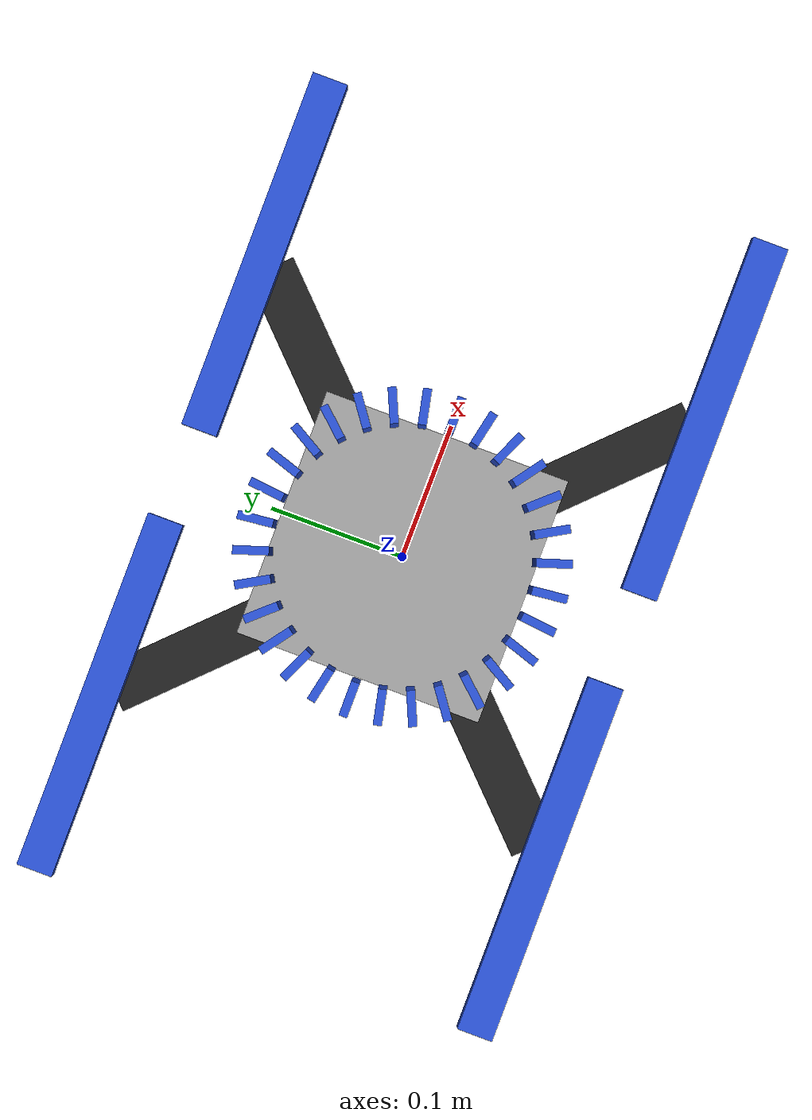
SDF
<?xml version="1.0" ?>

<sdf version="1.5">
  <model name="pendulum_quadcopter">
    <include>
      <uri>model://pendulum_quadcopter_base</uri>
      <name>pendulum_quadcopter_base</name>
      <pose>0 0 0 0 0 0</pose>
    </include>

    <include>
      <uri>model://pendulum_quadcopter_prop</uri>
      <name>pendulum_quadcopter_prop_0</name>
      <pose>0.1591 -0.1591 0.045 0 0 0</pose>
    </include>

    <joint name="pendulum_quadcopter_prop_0_joint" type="revolute">
      <parent>pendulum_quadcopter_base::platform_base</parent>
      <child>pendulum_quadcopter_prop_0::prop</child>
      <axis>
        <xyz>0 0 1</xyz>
        <limit>
          <lower>-1e+16</lower>
          <upper>1e+16</upper>
        </limit>
        <dynamics>
          <damping>0.00001</damping>
        </dynamics>
        <use_parent_model_frame>1</use_parent_model_frame>
      </axis>
    </joint>

    <plugin name="pendulum_quadcopter_prop_0_plugin" filename="librotors_gazebo_motor_model.so">
      <robotNamespace></robotNamespace>
      <jointName>pendulum_quadcopter_prop_0_joint </jointName>
      <linkName>pendulum_quadcopter_prop_0::prop</linkName>
      <turningDirection>ccw</turningDirection>
      <timeConstantUp>0.0125</timeConstantUp>
      <timeConstantDown>0.025</timeConstantDown>
      <maxRotVelocity>1000</maxRotVelocity>
      <motorConstant>8.599e-06</motorConstant>
      <momentConstant>0.1</momentConstant>
      <commandSubTopic>/gazebo/command/prop_speed</commandSubTopic>
      <motorNumber>0</motorNumber>
      <rotorDragCoefficient>0.000806428</rotorDragCoefficient>
      <rollingMomentCoefficient>1e-06</rollingMomentCoefficient>
      <motorSpeedPubTopic>prop_speed/0</motorSpeedPubTopic>
      <rotorVelocitySlowdownSim>10</rotorVelocitySlowdownSim>
    </plugin>

    <include>
      <uri>model://pendulum_quadcopter_prop</uri>
      <name>pendulum_quadcopter_prop_1</name>
      <pose>-0.1591 -0.1591 0.045 0 0 0</pose>
    </include>

    <joint name="pendulum_quadcopter_prop_1_joint" type="revolute">
      <parent>pendulum_quadcopter_base::platform_base</parent>
      <child>pendulum_quadcopter_prop_1::prop</child>
      <axis>
        <xyz>0 0 1</xyz>
        <limit>
          <lower>-1e+16</lower>
          <upper>1e+16</upper>
        </limit>
        <dynamics>
          <damping>0.00001</damping>
        </dynamics>
        <use_parent_model_frame>1</use_parent_model_frame>
      </axis>
    </joint>

    <plugin name="pendulum_quadcopter_prop_1_plugin" filename="librotors_gazebo_motor_model.so">
      <robotNamespace></robotNamespace>
      <jointName>pendulum_quadcopter_prop_1_joint </jointName>
      <linkName>pendulum_quadcopter_prop_1::prop</linkName>
      <turningDirection>cw</turningDirection>
      <timeConstantUp>0.0125</timeConstantUp>
      <timeConstantDown>0.025</timeConstantDown>
      <maxRotVelocity>1000</maxRotVelocity>
      <motorConstant>8.599e-06</motorConstant>
      <momentConstant>0.1</momentConstant>
      <commandSubTopic>/gazebo/command/prop_speed</commandSubTopic>
      <motorNumber>1</motorNumber>
      <rotorDragCoefficient>0.000806428</rotorDragCoefficient>
      <rollingMomentCoefficient>1e-06</rollingMomentCoefficient>
      <motorSpeedPubTopic>prop_speed/1</motorSpeedPubTopic>
      <rotorVelocitySlowdownSim>10</rotorVelocitySlowdownSim>
    </plugin>

    <include>
      <uri>model://pendulum_quadcopter_prop</uri>
      <name>pendulum_quadcopter_prop_2</name>
      <pose>-0.1591 0.1591 0.045 0 0 3.141592653589793</pose>
    </include>

    <joint name="pendulum_quadcopter_prop_2_joint" type="revolute">
      <parent>pendulum_quadcopter_base::platform_base</parent>
      <child>pendulum_quadcopter_prop_2::prop</child>
      <axis>
        <xyz>0 0 1</xyz>
        <limit>
          <lower>-1e+16</lower>
          <upper>1e+16</upper>
        </limit>
        <dynamics>
          <damping>0.00001</damping>
        </dynamics>
        <use_parent_model_frame>1</use_parent_model_frame>
      </axis>
    </joint>

    <plugin name="pendulum_quadcopter_prop_2_plugin" filename="librotors_gazebo_motor_model.so">
      <robotNamespace></robotNamespace>
      <jointName>pendulum_quadcopter_prop_2_joint </jointName>
      <linkName>pendulum_quadcopter_prop_2::prop</linkName>
      <turningDirection>ccw</turningDirection>
      <timeConstantUp>0.0125</timeConstantUp>
      <timeConstantDown>0.025</timeConstantDown>
      <maxRotVelocity>1000</maxRotVelocity>
      <motorConstant>8.599e-06</motorConstant>
      <momentConstant>0.1</momentConstant>
      <commandSubTopic>/gazebo/command/prop_speed</commandSubTopic>
      <motorNumber>2</motorNumber>
      <rotorDragCoefficient>0.000806428</rotorDragCoefficient>
      <rollingMomentCoefficient>1e-06</rollingMomentCoefficient>
      <motorSpeedPubTopic>prop_speed/2</motorSpeedPubTopic>
      <rotorVelocitySlowdownSim>10</rotorVelocitySlowdownSim>
    </plugin>

    <include>
      <uri>model://pendulum_quadcopter_prop</uri>
      <name>pendulum_quadcopter_prop_3</name>
      <pose>0.1591 0.1591 0.045 0 0 3.141592653589793</pose>
    </include>

    <joint name="pendulum_quadcopter_prop_3_joint" type="revolute">
      <parent>pendulum_quadcopter_base::platform_base</parent>
      <child>pendulum_quadcopter_prop_3::prop</child>
      <axis>
        <xyz>0 0 1</xyz>
        <limit>
          <lower>-1e+16</lower>
          <upper>1e+16</upper>
        </limit>
        <dynamics>
          <damping>0.00001</damping>
        </dynamics>
        <use_parent_model_frame>1</use_parent_model_frame>
      </axis>
    </joint>

    <plugin name="pendulum_quadcopter_prop_3_plugin" filename="librotors_gazebo_motor_model.so">
      <robotNamespace></robotNamespace>
      <jointName>pendulum_quadcopter_prop_3_joint </jointName>
      <linkName>pendulum_quadcopter_prop_3::prop</linkName>
      <turningDirection>cw</turningDirection>
      <timeConstantUp>0.0125</timeConstantUp>
      <timeConstantDown>0.025</timeConstantDown>
      <maxRotVelocity>1000</maxRotVelocity>
      <motorConstant>8.599e-06</motorConstant>
      <momentConstant>0.1</momentConstant>
      <commandSubTopic>/gazebo/command/prop_speed</commandSubTopic>
      <motorNumber>3</motorNumber>
      <rotorDragCoefficient>0.000806428</rotorDragCoefficient>
      <rollingMomentCoefficient>1e-06</rollingMomentCoefficient>
      <motorSpeedPubTopic>prop_speed/3</motorSpeedPubTopic>
      <rotorVelocitySlowdownSim>10</rotorVelocitySlowdownSim>
    </plugin>

    <plugin name="ArduRotorNormPlugin" filename="libArduRotorNormPlugin.so">
      <fdm_addr>127.0.0.1</fdm_addr>
      <fdm_port_in>9002</fdm_port_in>
      <fdm_port_out>9003</fdm_port_out>
      <modelXYZToAirplaneXForwardZDown>0 0 0 3.141593 0 0</modelXYZToAirplaneXForwardZDown>
      <gazeboXYZToNED>0 0 0 3.141593 0 0</gazeboXYZToNED>
      <motor_num>4</motor_num>
      <servo_num>0</servo_num>
      <motor_pub>/gazebo/command/prop_speed</motor_pub>
      <imuName>pendulum_quadcopter_base::imu_link::imu_sensor</imuName>
      <connectionTimeoutMaxCount>5</connectionTimeoutMaxCount>
    </plugin>
  </model>
</sdf>

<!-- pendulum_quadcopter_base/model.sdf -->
<sdf version="1.5">
  <model name="pendulum_quadcopter_platform">
    <link name="platform_base">
      <pose>0 0 0 0 0 0</pose>
      <inertial>
        <pose>0 0 0 0 0 0</pose>
        <mass>1.1</mass>
        <inertia>
          <ixx>0.018</ixx>
          <iyy>0.018</iyy>
          <izz>0.032</izz>
          <ixy>0</ixy>
          <ixz>0</ixz>
          <iyz>0</iyz>
        </inertia>
      </inertial>

      <collision name="body_collision">
        <pose>0 0 0 0 0 0</pose>
        <geometry>
          <box>
            <size>0.18 0.18 0.045</size>
          </box>
        </geometry>
        <surface>
          <contact>
            <ode>
              <max_vel>100.0</max_vel>
              <min_depth>0.001</min_depth>
            </ode>
          </contact>
          <friction>
            <ode>
              <mu>100000.0</mu>
              <mu2>100000.0</mu2>
            </ode>
          </friction>
        </surface>
      </collision>
      <visual name="body_visual">
        <pose>0 0 0 0 0 0</pose>
        <geometry>
          <box>
            <size>0.18 0.18 0.045</size>
          </box>
        </geometry>
        <material>
          <script>
            <name>Gazebo/Grey</name>
          </script>
        </material>
      </visual>

      <collision name="arm_positive_collision">
        <pose>0 0 0 0 0 0.7853981633974483</pose>
        <geometry>
          <box>
            <size>0.45 0.035 0.025</size>
          </box>
        </geometry>
      </collision>
      <visual name="arm_positive_visual">
        <pose>0 0 0 0 0 0.7853981633974483</pose>
        <geometry>
          <box>
            <size>0.45 0.035 0.025</size>
          </box>
        </geometry>
        <material>
          <script>
            <name>Gazebo/Black</name>
          </script>
        </material>
      </visual>

      <collision name="arm_negative_collision">
        <pose>0 0 0 0 0 -0.7853981633974483</pose>
        <geometry>
          <box>
            <size>0.45 0.035 0.025</size>
          </box>
        </geometry>
      </collision>
      <visual name="arm_negative_visual">
        <pose>0 0 0 0 0 -0.7853981633974483</pose>
        <geometry>
          <box>
            <size>0.45 0.035 0.025</size>
          </box>
        </geometry>
        <material>
          <script>
            <name>Gazebo/Black</name>
          </script>
        </material>
      </visual>

      <collision name="pendulum_cup_collision_0">
        <pose>0.10300000000000001 0.0 0.035 0 0 0.0</pose>
        <geometry>
          <box>
            <size>0.0248081099878474 0.006 0.025</size>
          </box>
        </geometry>
        <surface>
          <contact>
            <ode>
              <max_vel>100.0</max_vel>
              <min_depth>0.001</min_depth>
            </ode>
          </contact>
          <friction>
            <ode>
              <mu>100000.0</mu>
              <mu2>100000.0</mu2>
            </ode>
          </friction>
        </surface>
      </collision>
      <visual name="pendulum_cup_visual_0">
        <pose>0.10300000000000001 0.0 0.035 0 0 0.0</pose>
        <geometry>
          <box>
            <size>0.0248081099878474 0.006 0.025</size>
          </box>
        </geometry>
        <material>
          <script>
            <name>Gazebo/Blue</name>
          </script>
        </material>
      </visual>

      <collision name="pendulum_cup_collision_1">
        <pose>0.10074920287558199 0.02141490415422921 0.035 0 0 0.20943951023931953</pose>
        <geometry>
          <box>
            <size>0.0248081099878474 0.006 0.025</size>
          </box>
        </geometry>
        <surface>
          <contact>
            <ode>
              <max_vel>100.0</max_vel>
              <min_depth>0.001</min_depth>
            </ode>
          </contact>
          <friction>
            <ode>
              <mu>100000.0</mu>
              <mu2>100000.0</mu2>
            </ode>
          </friction>
        </surface>
      </collision>
      <visual name="pendulum_cup_visual_1">
        <pose>0.10074920287558199 0.02141490415422921 0.035 0 0 0.20943951023931953</pose>
        <geometry>
          <box>
            <size>0.0248081099878474 0.006 0.025</size>
          </box>
        </geometry>
        <material>
          <script>
            <name>Gazebo/Blue</name>
          </script>
        </material>
      </visual>

      <collision name="pendulum_cup_collision_2">
        <pose>0.0940951821371879 0.04189387423680742 0.035 0 0 0.41887902047863906</pose>
        <geometry>
          <box>
            <size>0.0248081099878474 0.006 0.025</size>
          </box>
        </geometry>
        <surface>
          <contact>
            <ode>
              <max_vel>100.0</max_vel>
              <min_depth>0.001</min_depth>
            </ode>
          </contact>
          <friction>
            <ode>
              <mu>100000.0</mu>
              <mu2>100000.0</mu2>
            </ode>
          </friction>
        </surface>
      </collision>
      <visual name="pendulum_cup_visual_2">
        <pose>0.0940951821371879 0.04189387423680742 0.035 0 0 0.41887902047863906</pose>
        <geometry>
          <box>
            <size>0.0248081099878474 0.006 0.025</size>
          </box>
        </geometry>
        <material>
          <script>
            <name>Gazebo/Blue</name>
          </script>
        </material>
      </visual>

      <collision name="pendulum_cup_collision_3">
        <pose>0.08332875042061959 0.06054188098612474 0.035 0 0 0.6283185307179586</pose>
        <geometry>
          <box>
            <size>0.0248081099878474 0.006 0.025</size>
          </box>
        </geometry>
        <surface>
          <contact>
            <ode>
              <max_vel>100.0</max_vel>
              <min_depth>0.001</min_depth>
            </ode>
          </contact>
          <friction>
            <ode>
              <mu>100000.0</mu>
              <mu2>100000.0</mu2>
            </ode>
          </friction>
        </surface>
      </collision>
      <visual name="pendulum_cup_visual_3">
        <pose>0.08332875042061959 0.06054188098612474 0.035 0 0 0.6283185307179586</pose>
        <geometry>
          <box>
            <size>0.0248081099878474 0.006 0.025</size>
          </box>
        </geometry>
        <material>
          <script>
            <name>Gazebo/Blue</name>
          </script>
        </material>
      </visual>

      <collision name="pendulum_cup_collision_4">
        <pose>0.06892045245496241 0.0765439170241716 0.035 0 0 0.8377580409572781</pose>
        <geometry>
          <box>
            <size>0.0248081099878474 0.006 0.025</size>
          </box>
        </geometry>
        <surface>
          <contact>
            <ode>
              <max_vel>100.0</max_vel>
              <min_depth>0.001</min_depth>
            </ode>
          </contact>
          <friction>
            <ode>
              <mu>100000.0</mu>
              <mu2>100000.0</mu2>
            </ode>
          </friction>
        </surface>
      </collision>
      <visual name="pendulum_cup_visual_4">
        <pose>0.06892045245496241 0.0765439170241716 0.035 0 0 0.8377580409572781</pose>
        <geometry>
          <box>
            <size>0.0248081099878474 0.006 0.025</size>
          </box>
        </geometry>
        <material>
          <script>
            <name>Gazebo/Blue</name>
          </script>
        </material>
      </visual>

      <collision name="pendulum_cup_collision_5">
        <pose>0.05150000000000002 0.08920061658979718 0.035 0 0 1.0471975511965976</pose>
        <geometry>
          <box>
            <size>0.0248081099878474 0.006 0.025</size>
          </box>
        </geometry>
        <surface>
          <contact>
            <ode>
              <max_vel>100.0</max_vel>
              <min_depth>0.001</min_depth>
            </ode>
          </contact>
          <friction>
            <ode>
              <mu>100000.0</mu>
              <mu2>100000.0</mu2>
            </ode>
          </friction>
        </surface>
      </collision>
      <visual name="pendulum_cup_visual_5">
        <pose>0.05150000000000002 0.08920061658979718 0.035 0 0 1.0471975511965976</pose>
        <geometry>
          <box>
            <size>0.0248081099878474 0.006 0.025</size>
          </box>
        </geometry>
        <material>
          <script>
            <name>Gazebo/Blue</name>
          </script>
        </material>
      </visual>

      <collision name="pendulum_cup_collision_6">
        <pose>0.03182875042061959 0.09795882117840082 0.035 0 0 1.2566370614359172</pose>
        <geometry>
          <box>
            <size>0.0248081099878474 0.006 0.025</size>
          </box>
        </geometry>
        <surface>
          <contact>
            <ode>
              <max_vel>100.0</max_vel>
              <min_depth>0.001</min_depth>
            </ode>
          </contact>
          <friction>
            <ode>
              <mu>100000.0</mu>
              <mu2>100000.0</mu2>
            </ode>
          </friction>
        </surface>
      </collision>
      <visual name="pendulum_cup_visual_6">
        <pose>0.03182875042061959 0.09795882117840082 0.035 0 0 1.2566370614359172</pose>
        <geometry>
          <box>
            <size>0.0248081099878474 0.006 0.025</size>
          </box>
        </geometry>
        <material>
          <script>
            <name>Gazebo/Blue</name>
          </script>
        </material>
      </visual>

      <collision name="pendulum_cup_collision_7">
        <pose>0.010766431716568306 0.10243575522293216 0.035 0 0 1.4660765716752369</pose>
        <geometry>
          <box>
            <size>0.0248081099878474 0.006 0.025</size>
          </box>
        </geometry>
        <surface>
          <contact>
            <ode>
              <max_vel>100.0</max_vel>
              <min_depth>0.001</min_depth>
            </ode>
          </contact>
          <friction>
            <ode>
              <mu>100000.0</mu>
              <mu2>100000.0</mu2>
            </ode>
          </friction>
        </surface>
      </collision>
      <visual name="pendulum_cup_visual_7">
        <pose>0.010766431716568306 0.10243575522293216 0.035 0 0 1.4660765716752369</pose>
        <geometry>
          <box>
            <size>0.0248081099878474 0.006 0.025</size>
          </box>
        </geometry>
        <material>
          <script>
            <name>Gazebo/Blue</name>
          </script>
        </material>
      </visual>

      <collision name="pendulum_cup_collision_8">
        <pose>-0.010766431716568294 0.10243575522293216 0.035 0 0 1.6755160819145563</pose>
        <geometry>
          <box>
            <size>0.0248081099878474 0.006 0.025</size>
          </box>
        </geometry>
        <surface>
          <contact>
            <ode>
              <max_vel>100.0</max_vel>
              <min_depth>0.001</min_depth>
            </ode>
          </contact>
          <friction>
            <ode>
              <mu>100000.0</mu>
              <mu2>100000.0</mu2>
            </ode>
          </friction>
        </surface>
      </collision>
      <visual name="pendulum_cup_visual_8">
        <pose>-0.010766431716568294 0.10243575522293216 0.035 0 0 1.6755160819145563</pose>
        <geometry>
          <box>
            <size>0.0248081099878474 0.006 0.025</size>
          </box>
        </geometry>
        <material>
          <script>
            <name>Gazebo/Blue</name>
          </script>
        </material>
      </visual>

      <collision name="pendulum_cup_collision_9">
        <pose>-0.03182875042061958 0.09795882117840084 0.035 0 0 1.8849555921538759</pose>
        <geometry>
          <box>
            <size>0.0248081099878474 0.006 0.025</size>
          </box>
        </geometry>
        <surface>
          <contact>
            <ode>
              <max_vel>100.0</max_vel>
              <min_depth>0.001</min_depth>
            </ode>
          </contact>
          <friction>
            <ode>
              <mu>100000.0</mu>
              <mu2>100000.0</mu2>
            </ode>
          </friction>
        </surface>
      </collision>
      <visual name="pendulum_cup_visual_9">
        <pose>-0.03182875042061958 0.09795882117840084 0.035 0 0 1.8849555921538759</pose>
        <geometry>
          <box>
            <size>0.0248081099878474 0.006 0.025</size>
          </box>
        </geometry>
        <material>
          <script>
            <name>Gazebo/Blue</name>
          </script>
        </material>
      </visual>

      <collision name="pendulum_cup_collision_10">
        <pose>-0.05149999999999998 0.0892006165897972 0.035 0 0 2.0943951023931953</pose>
        <geometry>
          <box>
            <size>0.0248081099878474 0.006 0.025</size>
          </box>
        </geometry>
        <surface>
          <contact>
            <ode>
              <max_vel>100.0</max_vel>
              <min_depth>0.001</min_depth>
            </ode>
          </contact>
          <friction>
            <ode>
              <mu>100000.0</mu>
              <mu2>100000.0</mu2>
            </ode>
          </friction>
        </surface>
      </collision>
      <visual name="pendulum_cup_visual_10">
        <pose>-0.05149999999999998 0.0892006165897972 0.035 0 0 2.0943951023931953</pose>
        <geometry>
          <box>
            <size>0.0248081099878474 0.006 0.025</size>
          </box>
        </geometry>
        <material>
          <script>
            <name>Gazebo/Blue</name>
          </script>
        </material>
      </visual>

      <collision name="pendulum_cup_collision_11">
        <pose>-0.06892045245496237 0.07654391702417164 0.035 0 0 2.3038346126325147</pose>
        <geometry>
          <box>
            <size>0.0248081099878474 0.006 0.025</size>
          </box>
        </geometry>
        <surface>
          <contact>
            <ode>
              <max_vel>100.0</max_vel>
              <min_depth>0.001</min_depth>
            </ode>
          </contact>
          <friction>
            <ode>
              <mu>100000.0</mu>
              <mu2>100000.0</mu2>
            </ode>
          </friction>
        </surface>
      </collision>
      <visual name="pendulum_cup_visual_11">
        <pose>-0.06892045245496237 0.07654391702417164 0.035 0 0 2.3038346126325147</pose>
        <geometry>
          <box>
            <size>0.0248081099878474 0.006 0.025</size>
          </box>
        </geometry>
        <material>
          <script>
            <name>Gazebo/Blue</name>
          </script>
        </material>
      </visual>

      <collision name="pendulum_cup_collision_12">
        <pose>-0.08332875042061959 0.06054188098612475 0.035 0 0 2.5132741228718345</pose>
        <geometry>
          <box>
            <size>0.0248081099878474 0.006 0.025</size>
          </box>
        </geometry>
        <surface>
          <contact>
            <ode>
              <max_vel>100.0</max_vel>
              <min_depth>0.001</min_depth>
            </ode>
          </contact>
          <friction>
            <ode>
              <mu>100000.0</mu>
              <mu2>100000.0</mu2>
            </ode>
          </friction>
        </surface>
      </collision>
      <visual name="pendulum_cup_visual_12">
        <pose>-0.08332875042061959 0.06054188098612475 0.035 0 0 2.5132741228718345</pose>
        <geometry>
          <box>
            <size>0.0248081099878474 0.006 0.025</size>
          </box>
        </geometry>
        <material>
          <script>
            <name>Gazebo/Blue</name>
          </script>
        </material>
      </visual>

      <collision name="pendulum_cup_collision_13">
        <pose>-0.09409518213718791 0.041893874236807405 0.035 0 0 2.7227136331111543</pose>
        <geometry>
          <box>
            <size>0.0248081099878474 0.006 0.025</size>
          </box>
        </geometry>
        <surface>
          <contact>
            <ode>
              <max_vel>100.0</max_vel>
              <min_depth>0.001</min_depth>
            </ode>
          </contact>
          <friction>
            <ode>
              <mu>100000.0</mu>
              <mu2>100000.0</mu2>
            </ode>
          </friction>
        </surface>
      </collision>
      <visual name="pendulum_cup_visual_13">
        <pose>-0.09409518213718791 0.041893874236807405 0.035 0 0 2.7227136331111543</pose>
        <geometry>
          <box>
            <size>0.0248081099878474 0.006 0.025</size>
          </box>
        </geometry>
        <material>
          <script>
            <name>Gazebo/Blue</name>
          </script>
        </material>
      </visual>

      <collision name="pendulum_cup_collision_14">
        <pose>-0.10074920287558199 0.02141490415422921 0.035 0 0 2.9321531433504737</pose>
        <geometry>
          <box>
            <size>0.0248081099878474 0.006 0.025</size>
          </box>
        </geometry>
        <surface>
          <contact>
            <ode>
              <max_vel>100.0</max_vel>
              <min_depth>0.001</min_depth>
            </ode>
          </contact>
          <friction>
            <ode>
              <mu>100000.0</mu>
              <mu2>100000.0</mu2>
            </ode>
          </friction>
        </surface>
      </collision>
      <visual name="pendulum_cup_visual_14">
        <pose>-0.10074920287558199 0.02141490415422921 0.035 0 0 2.9321531433504737</pose>
        <geometry>
          <box>
            <size>0.0248081099878474 0.006 0.025</size>
          </box>
        </geometry>
        <material>
          <script>
            <name>Gazebo/Blue</name>
          </script>
        </material>
      </visual>

      <collision name="pendulum_cup_collision_15">
        <pose>-0.10300000000000001 5.83550506457742e-17 0.035 0 0 3.1415926535897927</pose>
        <geometry>
          <box>
            <size>0.0248081099878474 0.006 0.025</size>
          </box>
        </geometry>
        <surface>
          <contact>
            <ode>
              <max_vel>100.0</max_vel>
              <min_depth>0.001</min_depth>
            </ode>
          </contact>
          <friction>
            <ode>
              <mu>100000.0</mu>
              <mu2>100000.0</mu2>
            </ode>
          </friction>
        </surface>
      </collision>
      <visual name="pendulum_cup_visual_15">
        <pose>-0.10300000000000001 5.83550506457742e-17 0.035 0 0 3.1415926535897927</pose>
        <geometry>
          <box>
            <size>0.0248081099878474 0.006 0.025</size>
          </box>
        </geometry>
        <material>
          <script>
            <name>Gazebo/Blue</name>
          </script>
        </material>
      </visual>

      <collision name="pendulum_cup_collision_16">
        <pose>-0.10074920287558199 -0.021414904154229187 0.035 0 0 3.3510321638291125</pose>
        <geometry>
          <box>
            <size>0.0248081099878474 0.006 0.025</size>
          </box>
        </geometry>
        <surface>
          <contact>
            <ode>
              <max_vel>100.0</max_vel>
              <min_depth>0.001</min_depth>
            </ode>
          </contact>
          <friction>
            <ode>
              <mu>100000.0</mu>
              <mu2>100000.0</mu2>
            </ode>
          </friction>
        </surface>
      </collision>
      <visual name="pendulum_cup_visual_16">
        <pose>-0.10074920287558199 -0.021414904154229187 0.035 0 0 3.3510321638291125</pose>
        <geometry>
          <box>
            <size>0.0248081099878474 0.006 0.025</size>
          </box>
        </geometry>
        <material>
          <script>
            <name>Gazebo/Blue</name>
          </script>
        </material>
      </visual>

      <collision name="pendulum_cup_collision_17">
        <pose>-0.0940951821371879 -0.041893874236807425 0.035 0 0 3.5604716740684323</pose>
        <geometry>
          <box>
            <size>0.0248081099878474 0.006 0.025</size>
          </box>
        </geometry>
        <surface>
          <contact>
            <ode>
              <max_vel>100.0</max_vel>
              <min_depth>0.001</min_depth>
            </ode>
          </contact>
          <friction>
            <ode>
              <mu>100000.0</mu>
              <mu2>100000.0</mu2>
            </ode>
          </friction>
        </surface>
      </collision>
      <visual name="pendulum_cup_visual_17">
        <pose>-0.0940951821371879 -0.041893874236807425 0.035 0 0 3.5604716740684323</pose>
        <geometry>
          <box>
            <size>0.0248081099878474 0.006 0.025</size>
          </box>
        </geometry>
        <material>
          <script>
            <name>Gazebo/Blue</name>
          </script>
        </material>
      </visual>

      <collision name="pendulum_cup_collision_18">
        <pose>-0.0833287504206196 -0.06054188098612473 0.035 0 0 3.7699111843077517</pose>
        <geometry>
          <box>
            <size>0.0248081099878474 0.006 0.025</size>
          </box>
        </geometry>
        <surface>
          <contact>
            <ode>
              <max_vel>100.0</max_vel>
              <min_depth>0.001</min_depth>
            </ode>
          </contact>
          <friction>
            <ode>
              <mu>100000.0</mu>
              <mu2>100000.0</mu2>
            </ode>
          </friction>
        </surface>
      </collision>
      <visual name="pendulum_cup_visual_18">
        <pose>-0.0833287504206196 -0.06054188098612473 0.035 0 0 3.7699111843077517</pose>
        <geometry>
          <box>
            <size>0.0248081099878474 0.006 0.025</size>
          </box>
        </geometry>
        <material>
          <script>
            <name>Gazebo/Blue</name>
          </script>
        </material>
      </visual>

      <collision name="pendulum_cup_collision_19">
        <pose>-0.06892045245496242 -0.07654391702417158 0.035 0 0 3.979350694547071</pose>
        <geometry>
          <box>
            <size>0.0248081099878474 0.006 0.025</size>
          </box>
        </geometry>
        <surface>
          <contact>
            <ode>
              <max_vel>100.0</max_vel>
              <min_depth>0.001</min_depth>
            </ode>
          </contact>
          <friction>
            <ode>
              <mu>100000.0</mu>
              <mu2>100000.0</mu2>
            </ode>
          </friction>
        </surface>
      </collision>
      <visual name="pendulum_cup_visual_19">
        <pose>-0.06892045245496242 -0.07654391702417158 0.035 0 0 3.979350694547071</pose>
        <geometry>
          <box>
            <size>0.0248081099878474 0.006 0.025</size>
          </box>
        </geometry>
        <material>
          <script>
            <name>Gazebo/Blue</name>
          </script>
        </material>
      </visual>

      <collision name="pendulum_cup_collision_20">
        <pose>-0.05150000000000005 -0.08920061658979717 0.035 0 0 4.1887902047863905</pose>
        <geometry>
          <box>
            <size>0.0248081099878474 0.006 0.025</size>
          </box>
        </geometry>
        <surface>
          <contact>
            <ode>
              <max_vel>100.0</max_vel>
              <min_depth>0.001</min_depth>
            </ode>
          </contact>
          <friction>
            <ode>
              <mu>100000.0</mu>
              <mu2>100000.0</mu2>
            </ode>
          </friction>
        </surface>
      </collision>
      <visual name="pendulum_cup_visual_20">
        <pose>-0.05150000000000005 -0.08920061658979717 0.035 0 0 4.1887902047863905</pose>
        <geometry>
          <box>
            <size>0.0248081099878474 0.006 0.025</size>
          </box>
        </geometry>
        <material>
          <script>
            <name>Gazebo/Blue</name>
          </script>
        </material>
      </visual>

      <collision name="pendulum_cup_collision_21">
        <pose>-0.031828750420619605 -0.09795882117840082 0.035 0 0 4.39822971502571</pose>
        <geometry>
          <box>
            <size>0.0248081099878474 0.006 0.025</size>
          </box>
        </geometry>
        <surface>
          <contact>
            <ode>
              <max_vel>100.0</max_vel>
              <min_depth>0.001</min_depth>
            </ode>
          </contact>
          <friction>
            <ode>
              <mu>100000.0</mu>
              <mu2>100000.0</mu2>
            </ode>
          </friction>
        </surface>
      </collision>
      <visual name="pendulum_cup_visual_21">
        <pose>-0.031828750420619605 -0.09795882117840082 0.035 0 0 4.39822971502571</pose>
        <geometry>
          <box>
            <size>0.0248081099878474 0.006 0.025</size>
          </box>
        </geometry>
        <material>
          <script>
            <name>Gazebo/Blue</name>
          </script>
        </material>
      </visual>

      <collision name="pendulum_cup_collision_22">
        <pose>-0.010766431716568386 -0.10243575522293216 0.035 0 0 4.607669225265029</pose>
        <geometry>
          <box>
            <size>0.0248081099878474 0.006 0.025</size>
          </box>
        </geometry>
        <surface>
          <contact>
            <ode>
              <max_vel>100.0</max_vel>
              <min_depth>0.001</min_depth>
            </ode>
          </contact>
          <friction>
            <ode>
              <mu>100000.0</mu>
              <mu2>100000.0</mu2>
            </ode>
          </friction>
        </surface>
      </collision>
      <visual name="pendulum_cup_visual_22">
        <pose>-0.010766431716568386 -0.10243575522293216 0.035 0 0 4.607669225265029</pose>
        <geometry>
          <box>
            <size>0.0248081099878474 0.006 0.025</size>
          </box>
        </geometry>
        <material>
          <script>
            <name>Gazebo/Blue</name>
          </script>
        </material>
      </visual>

      <collision name="pendulum_cup_collision_23">
        <pose>0.010766431716568258 -0.10243575522293216 0.035 0 0 4.817108735504349</pose>
        <geometry>
          <box>
            <size>0.0248081099878474 0.006 0.025</size>
          </box>
        </geometry>
        <surface>
          <contact>
            <ode>
              <max_vel>100.0</max_vel>
              <min_depth>0.001</min_depth>
            </ode>
          </contact>
          <friction>
            <ode>
              <mu>100000.0</mu>
              <mu2>100000.0</mu2>
            </ode>
          </friction>
        </surface>
      </collision>
      <visual name="pendulum_cup_visual_23">
        <pose>0.010766431716568258 -0.10243575522293216 0.035 0 0 4.817108735504349</pose>
        <geometry>
          <box>
            <size>0.0248081099878474 0.006 0.025</size>
          </box>
        </geometry>
        <material>
          <script>
            <name>Gazebo/Blue</name>
          </script>
        </material>
      </visual>

      <collision name="pendulum_cup_collision_24">
        <pose>0.03182875042061957 -0.09795882117840084 0.035 0 0 5.026548245743669</pose>
        <geometry>
          <box>
            <size>0.0248081099878474 0.006 0.025</size>
          </box>
        </geometry>
        <surface>
          <contact>
            <ode>
              <max_vel>100.0</max_vel>
              <min_depth>0.001</min_depth>
            </ode>
          </contact>
          <friction>
            <ode>
              <mu>100000.0</mu>
              <mu2>100000.0</mu2>
            </ode>
          </friction>
        </surface>
      </collision>
      <visual name="pendulum_cup_visual_24">
        <pose>0.03182875042061957 -0.09795882117840084 0.035 0 0 5.026548245743669</pose>
        <geometry>
          <box>
            <size>0.0248081099878474 0.006 0.025</size>
          </box>
        </geometry>
        <material>
          <script>
            <name>Gazebo/Blue</name>
          </script>
        </material>
      </visual>

      <collision name="pendulum_cup_collision_25">
        <pose>0.05150000000000002 -0.08920061658979718 0.035 0 0 5.235987755982989</pose>
        <geometry>
          <box>
            <size>0.0248081099878474 0.006 0.025</size>
          </box>
        </geometry>
        <surface>
          <contact>
            <ode>
              <max_vel>100.0</max_vel>
              <min_depth>0.001</min_depth>
            </ode>
          </contact>
          <friction>
            <ode>
              <mu>100000.0</mu>
              <mu2>100000.0</mu2>
            </ode>
          </friction>
        </surface>
      </collision>
      <visual name="pendulum_cup_visual_25">
        <pose>0.05150000000000002 -0.08920061658979718 0.035 0 0 5.235987755982989</pose>
        <geometry>
          <box>
            <size>0.0248081099878474 0.006 0.025</size>
          </box>
        </geometry>
        <material>
          <script>
            <name>Gazebo/Blue</name>
          </script>
        </material>
      </visual>

      <collision name="pendulum_cup_collision_26">
        <pose>0.06892045245496242 -0.07654391702417158 0.035 0 0 5.445427266222309</pose>
        <geometry>
          <box>
            <size>0.0248081099878474 0.006 0.025</size>
          </box>
        </geometry>
        <surface>
          <contact>
            <ode>
              <max_vel>100.0</max_vel>
              <min_depth>0.001</min_depth>
            </ode>
          </contact>
          <friction>
            <ode>
              <mu>100000.0</mu>
              <mu2>100000.0</mu2>
            </ode>
          </friction>
        </surface>
      </collision>
      <visual name="pendulum_cup_visual_26">
        <pose>0.06892045245496242 -0.07654391702417158 0.035 0 0 5.445427266222309</pose>
        <geometry>
          <box>
            <size>0.0248081099878474 0.006 0.025</size>
          </box>
        </geometry>
        <material>
          <script>
            <name>Gazebo/Blue</name>
          </script>
        </material>
      </visual>

      <collision name="pendulum_cup_collision_27">
        <pose>0.08332875042061959 -0.06054188098612476 0.035 0 0 5.654866776461628</pose>
        <geometry>
          <box>
            <size>0.0248081099878474 0.006 0.025</size>
          </box>
        </geometry>
        <surface>
          <contact>
            <ode>
              <max_vel>100.0</max_vel>
              <min_depth>0.001</min_depth>
            </ode>
          </contact>
          <friction>
            <ode>
              <mu>100000.0</mu>
              <mu2>100000.0</mu2>
            </ode>
          </friction>
        </surface>
      </collision>
      <visual name="pendulum_cup_visual_27">
        <pose>0.08332875042061959 -0.06054188098612476 0.035 0 0 5.654866776461628</pose>
        <geometry>
          <box>
            <size>0.0248081099878474 0.006 0.025</size>
          </box>
        </geometry>
        <material>
          <script>
            <name>Gazebo/Blue</name>
          </script>
        </material>
      </visual>

      <collision name="pendulum_cup_collision_28">
        <pose>0.09409518213718791 -0.04189387423680742 0.035 0 0 5.8643062867009474</pose>
        <geometry>
          <box>
            <size>0.0248081099878474 0.006 0.025</size>
          </box>
        </geometry>
        <surface>
          <contact>
            <ode>
              <max_vel>100.0</max_vel>
              <min_depth>0.001</min_depth>
            </ode>
          </contact>
          <friction>
            <ode>
              <mu>100000.0</mu>
              <mu2>100000.0</mu2>
            </ode>
          </friction>
        </surface>
      </collision>
      <visual name="pendulum_cup_visual_28">
        <pose>0.09409518213718791 -0.04189387423680742 0.035 0 0 5.8643062867009474</pose>
        <geometry>
          <box>
            <size>0.0248081099878474 0.006 0.025</size>
          </box>
        </geometry>
        <material>
          <script>
            <name>Gazebo/Blue</name>
          </script>
        </material>
      </visual>

      <collision name="pendulum_cup_collision_29">
        <pose>0.10074920287558199 -0.021414904154229177 0.035 0 0 6.073745796940267</pose>
        <geometry>
          <box>
            <size>0.0248081099878474 0.006 0.025</size>
          </box>
        </geometry>
        <surface>
          <contact>
            <ode>
              <max_vel>100.0</max_vel>
              <min_depth>0.001</min_depth>
            </ode>
          </contact>
          <friction>
            <ode>
              <mu>100000.0</mu>
              <mu2>100000.0</mu2>
            </ode>
          </friction>
        </surface>
      </collision>
      <visual name="pendulum_cup_visual_29">
        <pose>0.10074920287558199 -0.021414904154229177 0.035 0 0 6.073745796940267</pose>
        <geometry>
          <box>
            <size>0.0248081099878474 0.006 0.025</size>
          </box>
        </geometry>
        <material>
          <script>
            <name>Gazebo/Blue</name>
          </script>
        </material>
      </visual>

    </link>

    <link name="imu_link">
      <inertial>
        <pose>0 0 0 0 0 0</pose>
        <mass>0.15</mass>
        <inertia>
          <ixx>0.00001</ixx>
          <ixy>0</ixy>
          <ixz>0</ixz>
          <iyy>0.00002</iyy>
          <iyz>0</iyz>
          <izz>0.00002</izz>
        </inertia>
      </inertial>
      <sensor name="imu_sensor" type="imu">
        <pose>0 0 0 3.141593 0 0</pose>
        <always_on>1</always_on>
        <update_rate>1000.0</update_rate>
        <topic>__default_topic__</topic>
      </sensor>
    </link>

    <joint name="imu_joint" type="fixed">
      <parent>platform_base</parent>
      <child>imu_link</child>
    </joint>
  </model>
</sdf>

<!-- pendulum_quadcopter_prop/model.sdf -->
<sdf version="1.5">
  <model name="pendulum_quadcopter_prop">
    <link name="prop">
      <pose>0 0 0 0 0 0</pose>
      <inertial>
        <pose>0 0 0 0 0 0</pose>
        <mass>0.025</mass>
        <inertia>
          <ixx>1.3770833333333338e-06</ixx>
          <ixy>0</ixy>
          <ixz>0</ixz>
          <iyy>0.00013448333333333334</iyy>
          <iyz>0</iyz>
          <izz>0.00013571041666666668</izz>
        </inertia>
      </inertial>
      <collision name="rotor_collision">
        <pose>0 0 0 0 0 0</pose>
        <geometry>
          <box>
            <size>0.254 0.025 0.006</size>
          </box>
        </geometry>
        <surface>
          <contact>
            <ode />
          </contact>
          <friction>
            <ode />
          </friction>
        </surface>
      </collision>
      <visual name="prop_visual">
        <pose>0 0 0 0 0 0</pose>
        <geometry>
          <box>
            <size>0.254 0.025 0.006</size>
          </box>
        </geometry>
        <material>
          <script>
            <name>Gazebo/Blue</name>
          </script>
        </material>
      </visual>
      <gravity>1</gravity>
      <velocity_decay />
      <self_collide>0</self_collide>
    </link>
  </model>
</sdf>
